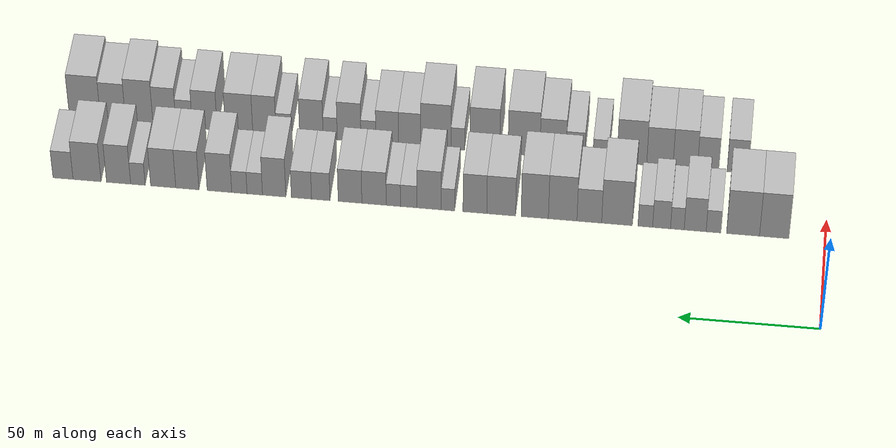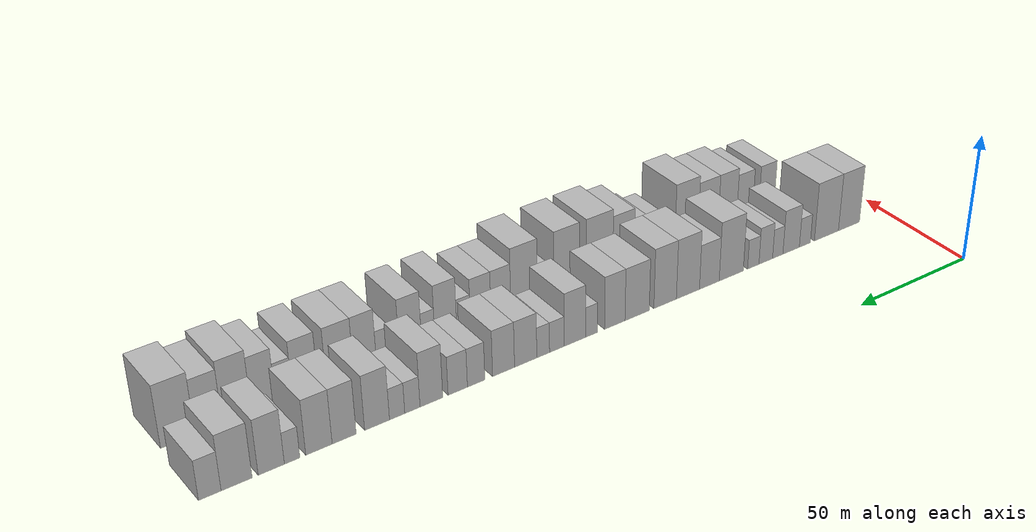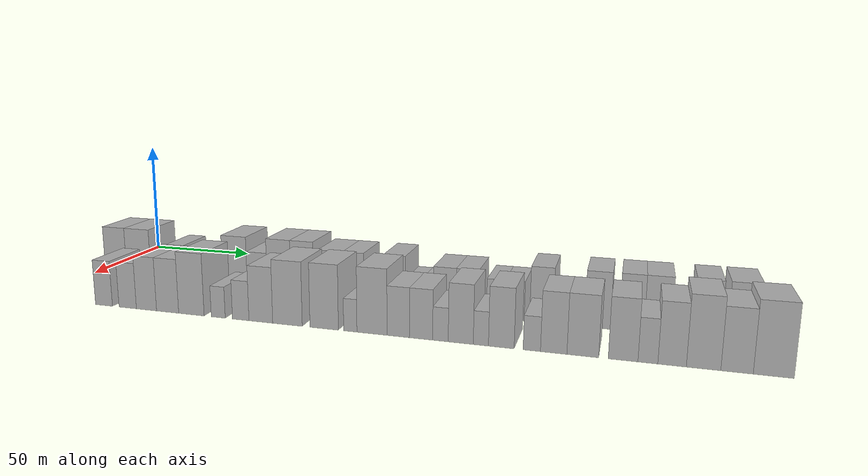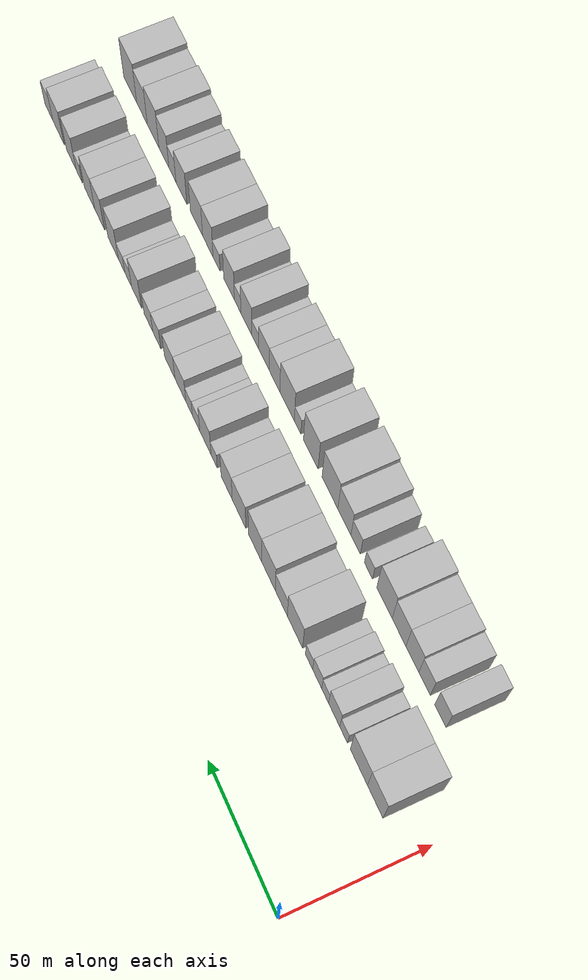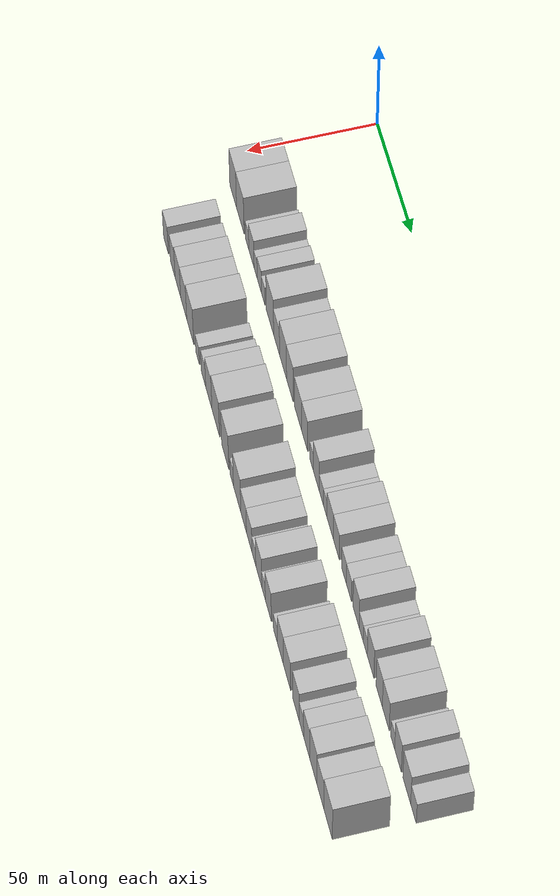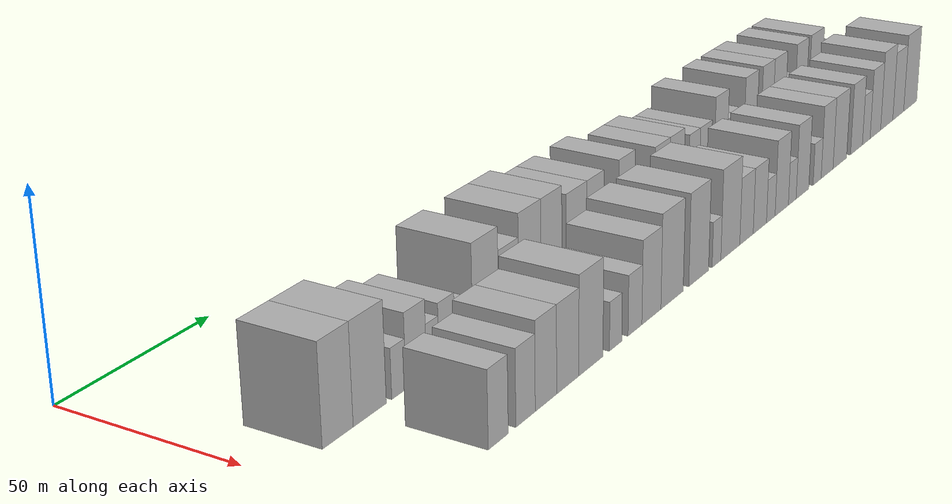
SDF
<sdf version="1.6">
 <world name="default">
  <model name="building_31">
   <static>1</static>
   <pose>50.0000 18.3045 0 0.000000 0.000000 0.000000</pose>
   <link name="link">
    <pose>0 0 12.00 0 0 0</pose>
    <collision name="collision"><geometry><box><size>20.0000 10.5250 24.0000</size></box></geometry></collision>
    <visual name="visual">
     <cast_shadows>0</cast_shadows>
     <geometry><box><size>20.0000 10.5250 24.0000</size></box></geometry>
     <material>
      <script>
       <uri>model://HANNAS_wall/materials/scripts</uri>
       <uri>model://HANNAS_wall/materials/textures</uri>
       <name>vrc/HANNAS_wall</name>
      </script>
     </material>
    </visual>
   </link>
  </model>
  <model name="building_32">
   <static>1</static>
   <pose>50.0000 29.4682 0 0.000000 0.000000 0.000000</pose>
   <link name="link">
    <pose>0 0 12.00 0 0 0</pose>
    <collision name="collision"><geometry><box><size>20.0000 11.8026 24.0000</size></box></geometry></collision>
    <visual name="visual">
     <cast_shadows>0</cast_shadows>
     <geometry><box><size>20.0000 11.8026 24.0000</size></box></geometry>
     <material>
      <script>
       <uri>model://HANNAS_wall/materials/scripts</uri>
       <uri>model://HANNAS_wall/materials/textures</uri>
       <name>vrc/HANNAS_wall</name>
      </script>
     </material>
    </visual>
   </link>
  </model>
  <model name="building_33">
   <static>1</static>
   <pose>50.0000 40.0269 0 0.000000 0.000000 0.000000</pose>
   <link name="link">
    <pose>0 0 6.00 0 0 0</pose>
    <collision name="collision"><geometry><box><size>20.0000 5.3147 12.0000</size></box></geometry></collision>
    <visual name="visual">
     <cast_shadows>0</cast_shadows>
     <geometry><box><size>20.0000 5.3147 12.0000</size></box></geometry>
     <material>
      <script>
       <uri>model://HANNAS_wall/materials/scripts</uri>
       <uri>model://HANNAS_wall/materials/textures</uri>
       <name>vrc/HANNAS_wall</name>
      </script>
     </material>
    </visual>
   </link>
  </model>
  <model name="building_34">
   <static>1</static>
   <pose>50.0000 46.6303 0 0.000000 0.000000 0.000000</pose>
   <link name="link">
    <pose>0 0 9.00 0 0 0</pose>
    <collision name="collision"><geometry><box><size>20.0000 7.8922 18.0000</size></box></geometry></collision>
    <visual name="visual">
     <cast_shadows>0</cast_shadows>
     <geometry><box><size>20.0000 7.8922 18.0000</size></box></geometry>
     <material>
      <script>
       <uri>model://HANNAS_wall/materials/scripts</uri>
       <uri>model://HANNAS_wall/materials/textures</uri>
       <name>vrc/HANNAS_wall</name>
      </script>
     </material>
    </visual>
   </link>
  </model>
  <model name="building_35">
   <static>1</static>
   <pose>50.0000 53.0246 0 0.000000 0.000000 0.000000</pose>
   <link name="link">
    <pose>0 0 6.00 0 0 0</pose>
    <collision name="collision"><geometry><box><size>20.0000 4.8964 12.0000</size></box></geometry></collision>
    <visual name="visual">
     <cast_shadows>0</cast_shadows>
     <geometry><box><size>20.0000 4.8964 12.0000</size></box></geometry>
     <material>
      <script>
       <uri>model://HANNAS_wall/materials/scripts</uri>
       <uri>model://HANNAS_wall/materials/textures</uri>
       <name>vrc/HANNAS_wall</name>
      </script>
     </material>
    </visual>
   </link>
  </model>
  <model name="building_36">
   <static>1</static>
   <pose>50.0000 58.6801 0 0.000000 0.000000 0.000000</pose>
   <link name="link">
    <pose>0 0 7.50 0 0 0</pose>
    <collision name="collision"><geometry><box><size>20.0000 6.4146 15.0000</size></box></geometry></collision>
    <visual name="visual">
     <cast_shadows>0</cast_shadows>
     <geometry><box><size>20.0000 6.4146 15.0000</size></box></geometry>
     <material>
      <script>
       <uri>model://HANNAS_wall/materials/scripts</uri>
       <uri>model://HANNAS_wall/materials/textures</uri>
       <name>vrc/HANNAS_wall</name>
      </script>
     </material>
    </visual>
   </link>
  </model>
  <model name="building_37">
   <static>1</static>
   <pose>50.0000 64.5308 0 0.000000 0.000000 0.000000</pose>
   <link name="link">
    <pose>0 0 6.00 0 0 0</pose>
    <collision name="collision"><geometry><box><size>20.0000 5.2868 12.0000</size></box></geometry></collision>
    <visual name="visual">
     <cast_shadows>0</cast_shadows>
     <geometry><box><size>20.0000 5.2868 12.0000</size></box></geometry>
     <material>
      <script>
       <uri>model://HANNAS_wall/materials/scripts</uri>
       <uri>model://HANNAS_wall/materials/textures</uri>
       <name>vrc/HANNAS_wall</name>
      </script>
     </material>
    </visual>
   </link>
  </model>
  <model name="building_38">
   <static>1</static>
   <pose>50.0000 74.7071 0 0.000000 0.000000 0.000000</pose>
   <link name="link">
    <pose>0 0 12.00 0 0 0</pose>
    <collision name="collision"><geometry><box><size>20.0000 11.0657 24.0000</size></box></geometry></collision>
    <visual name="visual">
     <cast_shadows>0</cast_shadows>
     <geometry><box><size>20.0000 11.0657 24.0000</size></box></geometry>
     <material>
      <script>
       <uri>model://HANNAS_wall/materials/scripts</uri>
       <uri>model://HANNAS_wall/materials/textures</uri>
       <name>vrc/HANNAS_wall</name>
      </script>
     </material>
    </visual>
   </link>
  </model>
  <model name="building_39">
   <static>1</static>
   <pose>50.0000 84.6900 0 0.000000 0.000000 0.000000</pose>
   <link name="link">
    <pose>0 0 9.00 0 0 0</pose>
    <collision name="collision"><geometry><box><size>20.0000 8.9002 18.0000</size></box></geometry></collision>
    <visual name="visual">
     <cast_shadows>0</cast_shadows>
     <geometry><box><size>20.0000 8.9002 18.0000</size></box></geometry>
     <material>
      <script>
       <uri>model://HANNAS_wall/materials/scripts</uri>
       <uri>model://HANNAS_wall/materials/textures</uri>
       <name>vrc/HANNAS_wall</name>
      </script>
     </material>
    </visual>
   </link>
  </model>
  <model name="building_40">
   <static>1</static>
   <pose>50.0000 94.2811 0 0.000000 0.000000 0.000000</pose>
   <link name="link">
    <pose>0 0 12.00 0 0 0</pose>
    <collision name="collision"><geometry><box><size>20.0000 10.2821 24.0000</size></box></geometry></collision>
    <visual name="visual">
     <cast_shadows>0</cast_shadows>
     <geometry><box><size>20.0000 10.2821 24.0000</size></box></geometry>
     <material>
      <script>
       <uri>model://HANNAS_wall/materials/scripts</uri>
       <uri>model://HANNAS_wall/materials/textures</uri>
       <name>vrc/HANNAS_wall</name>
      </script>
     </material>
    </visual>
   </link>
  </model>
  <model name="building_41">
   <static>1</static>
   <pose>50.0000 104.3454 0 0.000000 0.000000 0.000000</pose>
   <link name="link">
    <pose>0 0 12.00 0 0 0</pose>
    <collision name="collision"><geometry><box><size>20.0000 9.8465 24.0000</size></box></geometry></collision>
    <visual name="visual">
     <cast_shadows>0</cast_shadows>
     <geometry><box><size>20.0000 9.8465 24.0000</size></box></geometry>
     <material>
      <script>
       <uri>model://HANNAS_wall/materials/scripts</uri>
       <uri>model://HANNAS_wall/materials/textures</uri>
       <name>vrc/HANNAS_wall</name>
      </script>
     </material>
    </visual>
   </link>
  </model>
  <model name="building_42">
   <static>1</static>
   <pose>50.0000 116.4671 0 0.000000 0.000000 0.000000</pose>
   <link name="link">
    <pose>0 0 10.50 0 0 0</pose>
    <collision name="collision"><geometry><box><size>20.0000 10.3969 21.0000</size></box></geometry></collision>
    <visual name="visual">
     <cast_shadows>0</cast_shadows>
     <geometry><box><size>20.0000 10.3969 21.0000</size></box></geometry>
     <material>
      <script>
       <uri>model://HANNAS_wall/materials/scripts</uri>
       <uri>model://HANNAS_wall/materials/textures</uri>
       <name>vrc/HANNAS_wall</name>
      </script>
     </material>
    </visual>
   </link>
  </model>
  <model name="building_43">
   <static>1</static>
   <pose>50.0000 125.9778 0 0.000000 0.000000 0.000000</pose>
   <link name="link">
    <pose>0 0 10.50 0 0 0</pose>
    <collision name="collision"><geometry><box><size>20.0000 8.6244 21.0000</size></box></geometry></collision>
    <visual name="visual">
     <cast_shadows>0</cast_shadows>
     <geometry><box><size>20.0000 8.6244 21.0000</size></box></geometry>
     <material>
      <script>
       <uri>model://HANNAS_wall/materials/scripts</uri>
       <uri>model://HANNAS_wall/materials/textures</uri>
       <name>vrc/HANNAS_wall</name>
      </script>
     </material>
    </visual>
   </link>
  </model>
  <model name="building_44">
   <static>1</static>
   <pose>50.0000 135.7127 0 0.000000 0.000000 0.000000</pose>
   <link name="link">
    <pose>0 0 6.00 0 0 0</pose>
    <collision name="collision"><geometry><box><size>20.0000 4.8454 12.0000</size></box></geometry></collision>
    <visual name="visual">
     <cast_shadows>0</cast_shadows>
     <geometry><box><size>20.0000 4.8454 12.0000</size></box></geometry>
     <material>
      <script>
       <uri>model://HANNAS_wall/materials/scripts</uri>
       <uri>model://HANNAS_wall/materials/textures</uri>
       <name>vrc/HANNAS_wall</name>
      </script>
     </material>
    </visual>
   </link>
  </model>
  <model name="building_45">
   <static>1</static>
   <pose>50.0000 142.5539 0 0.000000 0.000000 0.000000</pose>
   <link name="link">
    <pose>0 0 10.50 0 0 0</pose>
    <collision name="collision"><geometry><box><size>20.0000 8.8371 21.0000</size></box></geometry></collision>
    <visual name="visual">
     <cast_shadows>0</cast_shadows>
     <geometry><box><size>20.0000 8.8371 21.0000</size></box></geometry>
     <material>
      <script>
       <uri>model://HANNAS_wall/materials/scripts</uri>
       <uri>model://HANNAS_wall/materials/textures</uri>
       <name>vrc/HANNAS_wall</name>
      </script>
     </material>
    </visual>
   </link>
  </model>
  <model name="building_46">
   <static>1</static>
   <pose>50.0000 149.9584 0 0.000000 0.000000 0.000000</pose>
   <link name="link">
    <pose>0 0 6.00 0 0 0</pose>
    <collision name="collision"><geometry><box><size>20.0000 5.9719 12.0000</size></box></geometry></collision>
    <visual name="visual">
     <cast_shadows>0</cast_shadows>
     <geometry><box><size>20.0000 5.9719 12.0000</size></box></geometry>
     <material>
      <script>
       <uri>model://HANNAS_wall/materials/scripts</uri>
       <uri>model://HANNAS_wall/materials/textures</uri>
       <name>vrc/HANNAS_wall</name>
      </script>
     </material>
    </visual>
   </link>
  </model>
  <model name="building_47">
   <static>1</static>
   <pose>50.0000 155.5113 0 0.000000 0.000000 0.000000</pose>
   <link name="link">
    <pose>0 0 6.00 0 0 0</pose>
    <collision name="collision"><geometry><box><size>20.0000 5.1338 12.0000</size></box></geometry></collision>
    <visual name="visual">
     <cast_shadows>0</cast_shadows>
     <geometry><box><size>20.0000 5.1338 12.0000</size></box></geometry>
     <material>
      <script>
       <uri>model://HANNAS_wall/materials/scripts</uri>
       <uri>model://HANNAS_wall/materials/textures</uri>
       <name>vrc/HANNAS_wall</name>
      </script>
     </material>
    </visual>
   </link>
  </model>
  <model name="building_48">
   <static>1</static>
   <pose>50.0000 162.5035 0 0.000000 0.000000 0.000000</pose>
   <link name="link">
    <pose>0 0 9.00 0 0 0</pose>
    <collision name="collision"><geometry><box><size>20.0000 8.8507 18.0000</size></box></geometry></collision>
    <visual name="visual">
     <cast_shadows>0</cast_shadows>
     <geometry><box><size>20.0000 8.8507 18.0000</size></box></geometry>
     <material>
      <script>
       <uri>model://HANNAS_wall/materials/scripts</uri>
       <uri>model://HANNAS_wall/materials/textures</uri>
       <name>vrc/HANNAS_wall</name>
      </script>
     </material>
    </visual>
   </link>
  </model>
  <model name="building_49">
   <static>1</static>
   <pose>50.0000 171.2219 0 0.000000 0.000000 0.000000</pose>
   <link name="link">
    <pose>0 0 9.00 0 0 0</pose>
    <collision name="collision"><geometry><box><size>20.0000 8.5860 18.0000</size></box></geometry></collision>
    <visual name="visual">
     <cast_shadows>0</cast_shadows>
     <geometry><box><size>20.0000 8.5860 18.0000</size></box></geometry>
     <material>
      <script>
       <uri>model://HANNAS_wall/materials/scripts</uri>
       <uri>model://HANNAS_wall/materials/textures</uri>
       <name>vrc/HANNAS_wall</name>
      </script>
     </material>
    </visual>
   </link>
  </model>
  <model name="building_50">
   <static>1</static>
   <pose>50.0000 181.8632 0 0.000000 0.000000 0.000000</pose>
   <link name="link">
    <pose>0 0 7.50 0 0 0</pose>
    <collision name="collision"><geometry><box><size>20.0000 6.6967 15.0000</size></box></geometry></collision>
    <visual name="visual">
     <cast_shadows>0</cast_shadows>
     <geometry><box><size>20.0000 6.6967 15.0000</size></box></geometry>
     <material>
      <script>
       <uri>model://HANNAS_wall/materials/scripts</uri>
       <uri>model://HANNAS_wall/materials/textures</uri>
       <name>vrc/HANNAS_wall</name>
      </script>
     </material>
    </visual>
   </link>
  </model>
  <model name="building_51">
   <static>1</static>
   <pose>50.0000 188.8856 0 0.000000 0.000000 0.000000</pose>
   <link name="link">
    <pose>0 0 7.50 0 0 0</pose>
    <collision name="collision"><geometry><box><size>20.0000 7.3482 15.0000</size></box></geometry></collision>
    <visual name="visual">
     <cast_shadows>0</cast_shadows>
     <geometry><box><size>20.0000 7.3482 15.0000</size></box></geometry>
     <material>
      <script>
       <uri>model://HANNAS_wall/materials/scripts</uri>
       <uri>model://HANNAS_wall/materials/textures</uri>
       <name>vrc/HANNAS_wall</name>
      </script>
     </material>
    </visual>
   </link>
  </model>
  <model name="building_52">
   <static>1</static>
   <pose>50.0000 198.8097 0 0.000000 0.000000 0.000000</pose>
   <link name="link">
    <pose>0 0 10.50 0 0 0</pose>
    <collision name="collision"><geometry><box><size>20.0000 8.5000 21.0000</size></box></geometry></collision>
    <visual name="visual">
     <cast_shadows>0</cast_shadows>
     <geometry><box><size>20.0000 8.5000 21.0000</size></box></geometry>
     <material>
      <script>
       <uri>model://HANNAS_wall/materials/scripts</uri>
       <uri>model://HANNAS_wall/materials/textures</uri>
       <name>vrc/HANNAS_wall</name>
      </script>
     </material>
    </visual>
   </link>
  </model>
  <model name="building_53">
   <static>1</static>
   <pose>50.0000 205.8723 0 0.000000 0.000000 0.000000</pose>
   <link name="link">
    <pose>0 0 6.00 0 0 0</pose>
    <collision name="collision"><geometry><box><size>20.0000 5.6251 12.0000</size></box></geometry></collision>
    <visual name="visual">
     <cast_shadows>0</cast_shadows>
     <geometry><box><size>20.0000 5.6251 12.0000</size></box></geometry>
     <material>
      <script>
       <uri>model://HANNAS_wall/materials/scripts</uri>
       <uri>model://HANNAS_wall/materials/textures</uri>
       <name>vrc/HANNAS_wall</name>
      </script>
     </material>
    </visual>
   </link>
  </model>
  <model name="building_54">
   <static>1</static>
   <pose>50.0000 211.4759 0 0.000000 0.000000 0.000000</pose>
   <link name="link">
    <pose>0 0 6.00 0 0 0</pose>
    <collision name="collision"><geometry><box><size>20.0000 5.5822 12.0000</size></box></geometry></collision>
    <visual name="visual">
     <cast_shadows>0</cast_shadows>
     <geometry><box><size>20.0000 5.5822 12.0000</size></box></geometry>
     <material>
      <script>
       <uri>model://HANNAS_wall/materials/scripts</uri>
       <uri>model://HANNAS_wall/materials/textures</uri>
       <name>vrc/HANNAS_wall</name>
      </script>
     </material>
    </visual>
   </link>
  </model>
  <model name="building_55">
   <static>1</static>
   <pose>50.0000 218.7514 0 0.000000 0.000000 0.000000</pose>
   <link name="link">
    <pose>0 0 10.50 0 0 0</pose>
    <collision name="collision"><geometry><box><size>20.0000 8.9689 21.0000</size></box></geometry></collision>
    <visual name="visual">
     <cast_shadows>0</cast_shadows>
     <geometry><box><size>20.0000 8.9689 21.0000</size></box></geometry>
     <material>
      <script>
       <uri>model://HANNAS_wall/materials/scripts</uri>
       <uri>model://HANNAS_wall/materials/textures</uri>
       <name>vrc/HANNAS_wall</name>
      </script>
     </material>
    </visual>
   </link>
  </model>
  <model name="building_56">
   <static>1</static>
   <pose>50.0000 230.4729 0 0.000000 0.000000 0.000000</pose>
   <link name="link">
    <pose>0 0 10.50 0 0 0</pose>
    <collision name="collision"><geometry><box><size>20.0000 8.4740 21.0000</size></box></geometry></collision>
    <visual name="visual">
     <cast_shadows>0</cast_shadows>
     <geometry><box><size>20.0000 8.4740 21.0000</size></box></geometry>
     <material>
      <script>
       <uri>model://HANNAS_wall/materials/scripts</uri>
       <uri>model://HANNAS_wall/materials/textures</uri>
       <name>vrc/HANNAS_wall</name>
      </script>
     </material>
    </visual>
   </link>
  </model>
  <model name="building_57">
   <static>1</static>
   <pose>50.0000 239.3039 0 0.000000 0.000000 0.000000</pose>
   <link name="link">
    <pose>0 0 10.50 0 0 0</pose>
    <collision name="collision"><geometry><box><size>20.0000 9.1881 21.0000</size></box></geometry></collision>
    <visual name="visual">
     <cast_shadows>0</cast_shadows>
     <geometry><box><size>20.0000 9.1881 21.0000</size></box></geometry>
     <material>
      <script>
       <uri>model://HANNAS_wall/materials/scripts</uri>
       <uri>model://HANNAS_wall/materials/textures</uri>
       <name>vrc/HANNAS_wall</name>
      </script>
     </material>
    </visual>
   </link>
  </model>
  <model name="building_58">
   <static>1</static>
   <pose>50.0000 248.5502 0 0.000000 0.000000 0.000000</pose>
   <link name="link">
    <pose>0 0 6.00 0 0 0</pose>
    <collision name="collision"><geometry><box><size>20.0000 5.3045 12.0000</size></box></geometry></collision>
    <visual name="visual">
     <cast_shadows>0</cast_shadows>
     <geometry><box><size>20.0000 5.3045 12.0000</size></box></geometry>
     <material>
      <script>
       <uri>model://HANNAS_wall/materials/scripts</uri>
       <uri>model://HANNAS_wall/materials/textures</uri>
       <name>vrc/HANNAS_wall</name>
      </script>
     </material>
    </visual>
   </link>
  </model>
  <model name="building_59">
   <static>1</static>
   <pose>50.0000 255.6241 0 0.000000 0.000000 0.000000</pose>
   <link name="link">
    <pose>0 0 10.50 0 0 0</pose>
    <collision name="collision"><geometry><box><size>20.0000 8.8433 21.0000</size></box></geometry></collision>
    <visual name="visual">
     <cast_shadows>0</cast_shadows>
     <geometry><box><size>20.0000 8.8433 21.0000</size></box></geometry>
     <material>
      <script>
       <uri>model://HANNAS_wall/materials/scripts</uri>
       <uri>model://HANNAS_wall/materials/textures</uri>
       <name>vrc/HANNAS_wall</name>
      </script>
     </material>
    </visual>
   </link>
  </model>
  <model name="building_60">
   <static>1</static>
   <pose>50.0000 267.1729 0 0.000000 0.000000 0.000000</pose>
   <link name="link">
    <pose>0 0 10.50 0 0 0</pose>
    <collision name="collision"><geometry><box><size>20.0000 10.2544 21.0000</size></box></geometry></collision>
    <visual name="visual">
     <cast_shadows>0</cast_shadows>
     <geometry><box><size>20.0000 10.2544 21.0000</size></box></geometry>
     <material>
      <script>
       <uri>model://HANNAS_wall/materials/scripts</uri>
       <uri>model://HANNAS_wall/materials/textures</uri>
       <name>vrc/HANNAS_wall</name>
      </script>
     </material>
    </visual>
   </link>
  </model>
  <model name="building_61">
   <static>1</static>
   <pose>50.0000 275.9822 0 0.000000 0.000000 0.000000</pose>
   <link name="link">
    <pose>0 0 7.50 0 0 0</pose>
    <collision name="collision"><geometry><box><size>20.0000 7.3640 15.0000</size></box></geometry></collision>
    <visual name="visual">
     <cast_shadows>0</cast_shadows>
     <geometry><box><size>20.0000 7.3640 15.0000</size></box></geometry>
     <material>
      <script>
       <uri>model://HANNAS_wall/materials/scripts</uri>
       <uri>model://HANNAS_wall/materials/textures</uri>
       <name>vrc/HANNAS_wall</name>
      </script>
     </material>
    </visual>
   </link>
  </model>
  <model name="building_90">
   <static>1</static>
   <pose>79.0000 33.1188 0 0.000000 0.000000 0.000000</pose>
   <link name="link">
    <pose>0 0 9.00 0 0 0</pose>
    <collision name="collision"><geometry><box><size>20.0000 7.6847 18.0000</size></box></geometry></collision>
    <visual name="visual">
     <cast_shadows>0</cast_shadows>
     <geometry><box><size>20.0000 7.6847 18.0000</size></box></geometry>
     <material>
      <script>
       <uri>model://HANNAS_wall/materials/scripts</uri>
       <uri>model://HANNAS_wall/materials/textures</uri>
       <name>vrc/HANNAS_wall</name>
      </script>
     </material>
    </visual>
   </link>
  </model>
  <model name="building_91">
   <static>1</static>
   <pose>79.0000 43.8431 0 0.000000 0.000000 0.000000</pose>
   <link name="link">
    <pose>0 0 9.00 0 0 0</pose>
    <collision name="collision"><geometry><box><size>20.0000 7.7638 18.0000</size></box></geometry></collision>
    <visual name="visual">
     <cast_shadows>0</cast_shadows>
     <geometry><box><size>20.0000 7.7638 18.0000</size></box></geometry>
     <material>
      <script>
       <uri>model://HANNAS_wall/materials/scripts</uri>
       <uri>model://HANNAS_wall/materials/textures</uri>
       <name>vrc/HANNAS_wall</name>
      </script>
     </material>
    </visual>
   </link>
  </model>
  <model name="building_92">
   <static>1</static>
   <pose>79.0000 52.1648 0 0.000000 0.000000 0.000000</pose>
   <link name="link">
    <pose>0 0 10.50 0 0 0</pose>
    <collision name="collision"><geometry><box><size>20.0000 8.8795 21.0000</size></box></geometry></collision>
    <visual name="visual">
     <cast_shadows>0</cast_shadows>
     <geometry><box><size>20.0000 8.8795 21.0000</size></box></geometry>
     <material>
      <script>
       <uri>model://HANNAS_wall/materials/scripts</uri>
       <uri>model://HANNAS_wall/materials/textures</uri>
       <name>vrc/HANNAS_wall</name>
      </script>
     </material>
    </visual>
   </link>
  </model>
  <model name="building_93">
   <static>1</static>
   <pose>79.0000 61.3990 0 0.000000 0.000000 0.000000</pose>
   <link name="link">
    <pose>0 0 10.50 0 0 0</pose>
    <collision name="collision"><geometry><box><size>20.0000 9.5889 21.0000</size></box></geometry></collision>
    <visual name="visual">
     <cast_shadows>0</cast_shadows>
     <geometry><box><size>20.0000 9.5889 21.0000</size></box></geometry>
     <material>
      <script>
       <uri>model://HANNAS_wall/materials/scripts</uri>
       <uri>model://HANNAS_wall/materials/textures</uri>
       <name>vrc/HANNAS_wall</name>
      </script>
     </material>
    </visual>
   </link>
  </model>
  <model name="building_94">
   <static>1</static>
   <pose>79.0000 71.6170 0 0.000000 0.000000 0.000000</pose>
   <link name="link">
    <pose>0 0 12.00 0 0 0</pose>
    <collision name="collision"><geometry><box><size>20.0000 10.8472 24.0000</size></box></geometry></collision>
    <visual name="visual">
     <cast_shadows>0</cast_shadows>
     <geometry><box><size>20.0000 10.8472 24.0000</size></box></geometry>
     <material>
      <script>
       <uri>model://HANNAS_wall/materials/scripts</uri>
       <uri>model://HANNAS_wall/materials/textures</uri>
       <name>vrc/HANNAS_wall</name>
      </script>
     </material>
    </visual>
   </link>
  </model>
  <model name="building_95">
   <static>1</static>
   <pose>79.0000 82.9405 0 0.000000 0.000000 0.000000</pose>
   <link name="link">
    <pose>0 0 6.00 0 0 0</pose>
    <collision name="collision"><geometry><box><size>20.0000 5.7998 12.0000</size></box></geometry></collision>
    <visual name="visual">
     <cast_shadows>0</cast_shadows>
     <geometry><box><size>20.0000 5.7998 12.0000</size></box></geometry>
     <material>
      <script>
       <uri>model://HANNAS_wall/materials/scripts</uri>
       <uri>model://HANNAS_wall/materials/textures</uri>
       <name>vrc/HANNAS_wall</name>
      </script>
     </material>
    </visual>
   </link>
  </model>
  <model name="building_96">
   <static>1</static>
   <pose>79.0000 92.2154 0 0.000000 0.000000 0.000000</pose>
   <link name="link">
    <pose>0 0 7.50 0 0 0</pose>
    <collision name="collision"><geometry><box><size>20.0000 6.7500 15.0000</size></box></geometry></collision>
    <visual name="visual">
     <cast_shadows>0</cast_shadows>
     <geometry><box><size>20.0000 6.7500 15.0000</size></box></geometry>
     <material>
      <script>
       <uri>model://HANNAS_wall/materials/scripts</uri>
       <uri>model://HANNAS_wall/materials/textures</uri>
       <name>vrc/HANNAS_wall</name>
      </script>
     </material>
    </visual>
   </link>
  </model>
  <model name="building_97">
   <static>1</static>
   <pose>79.0000 100.3749 0 0.000000 0.000000 0.000000</pose>
   <link name="link">
    <pose>0 0 10.50 0 0 0</pose>
    <collision name="collision"><geometry><box><size>20.0000 9.5691 21.0000</size></box></geometry></collision>
    <visual name="visual">
     <cast_shadows>0</cast_shadows>
     <geometry><box><size>20.0000 9.5691 21.0000</size></box></geometry>
     <material>
      <script>
       <uri>model://HANNAS_wall/materials/scripts</uri>
       <uri>model://HANNAS_wall/materials/textures</uri>
       <name>vrc/HANNAS_wall</name>
      </script>
     </material>
    </visual>
   </link>
  </model>
  <model name="building_98">
   <static>1</static>
   <pose>79.0000 110.9845 0 0.000000 0.000000 0.000000</pose>
   <link name="link">
    <pose>0 0 12.00 0 0 0</pose>
    <collision name="collision"><geometry><box><size>20.0000 11.6500 24.0000</size></box></geometry></collision>
    <visual name="visual">
     <cast_shadows>0</cast_shadows>
     <geometry><box><size>20.0000 11.6500 24.0000</size></box></geometry>
     <material>
      <script>
       <uri>model://HANNAS_wall/materials/scripts</uri>
       <uri>model://HANNAS_wall/materials/textures</uri>
       <name>vrc/HANNAS_wall</name>
      </script>
     </material>
    </visual>
   </link>
  </model>
  <model name="building_99">
   <static>1</static>
   <pose>79.0000 125.2608 0 0.000000 0.000000 0.000000</pose>
   <link name="link">
    <pose>0 0 12.00 0 0 0</pose>
    <collision name="collision"><geometry><box><size>20.0000 10.9028 24.0000</size></box></geometry></collision>
    <visual name="visual">
     <cast_shadows>0</cast_shadows>
     <geometry><box><size>20.0000 10.9028 24.0000</size></box></geometry>
     <material>
      <script>
       <uri>model://HANNAS_wall/materials/scripts</uri>
       <uri>model://HANNAS_wall/materials/textures</uri>
       <name>vrc/HANNAS_wall</name>
      </script>
     </material>
    </visual>
   </link>
  </model>
  <model name="building_100">
   <static>1</static>
   <pose>79.0000 135.2028 0 0.000000 0.000000 0.000000</pose>
   <link name="link">
    <pose>0 0 6.00 0 0 0</pose>
    <collision name="collision"><geometry><box><size>20.0000 4.9811 12.0000</size></box></geometry></collision>
    <visual name="visual">
     <cast_shadows>0</cast_shadows>
     <geometry><box><size>20.0000 4.9811 12.0000</size></box></geometry>
     <material>
      <script>
       <uri>model://HANNAS_wall/materials/scripts</uri>
       <uri>model://HANNAS_wall/materials/textures</uri>
       <name>vrc/HANNAS_wall</name>
      </script>
     </material>
    </visual>
   </link>
  </model>
  <model name="building_101">
   <static>1</static>
   <pose>79.0000 143.2543 0 0.000000 0.000000 0.000000</pose>
   <link name="link">
    <pose>0 0 12.00 0 0 0</pose>
    <collision name="collision"><geometry><box><size>20.0000 11.1219 24.0000</size></box></geometry></collision>
    <visual name="visual">
     <cast_shadows>0</cast_shadows>
     <geometry><box><size>20.0000 11.1219 24.0000</size></box></geometry>
     <material>
      <script>
       <uri>model://HANNAS_wall/materials/scripts</uri>
       <uri>model://HANNAS_wall/materials/textures</uri>
       <name>vrc/HANNAS_wall</name>
      </script>
     </material>
    </visual>
   </link>
  </model>
  <model name="building_102">
   <static>1</static>
   <pose>79.0000 152.8846 0 0.000000 0.000000 0.000000</pose>
   <link name="link">
    <pose>0 0 9.00 0 0 0</pose>
    <collision name="collision"><geometry><box><size>20.0000 8.1387 18.0000</size></box></geometry></collision>
    <visual name="visual">
     <cast_shadows>0</cast_shadows>
     <geometry><box><size>20.0000 8.1387 18.0000</size></box></geometry>
     <material>
      <script>
       <uri>model://HANNAS_wall/materials/scripts</uri>
       <uri>model://HANNAS_wall/materials/textures</uri>
       <name>vrc/HANNAS_wall</name>
      </script>
     </material>
    </visual>
   </link>
  </model>
  <model name="building_103">
   <static>1</static>
   <pose>79.0000 161.1073 0 0.000000 0.000000 0.000000</pose>
   <link name="link">
    <pose>0 0 9.00 0 0 0</pose>
    <collision name="collision"><geometry><box><size>20.0000 8.3067 18.0000</size></box></geometry></collision>
    <visual name="visual">
     <cast_shadows>0</cast_shadows>
     <geometry><box><size>20.0000 8.3067 18.0000</size></box></geometry>
     <material>
      <script>
       <uri>model://HANNAS_wall/materials/scripts</uri>
       <uri>model://HANNAS_wall/materials/textures</uri>
       <name>vrc/HANNAS_wall</name>
      </script>
     </material>
    </visual>
   </link>
  </model>
  <model name="building_104">
   <static>1</static>
   <pose>79.0000 168.0073 0 0.000000 0.000000 0.000000</pose>
   <link name="link">
    <pose>0 0 6.00 0 0 0</pose>
    <collision name="collision"><geometry><box><size>20.0000 5.4934 12.0000</size></box></geometry></collision>
    <visual name="visual">
     <cast_shadows>0</cast_shadows>
     <geometry><box><size>20.0000 5.4934 12.0000</size></box></geometry>
     <material>
      <script>
       <uri>model://HANNAS_wall/materials/scripts</uri>
       <uri>model://HANNAS_wall/materials/textures</uri>
       <name>vrc/HANNAS_wall</name>
      </script>
     </material>
    </visual>
   </link>
  </model>
  <model name="building_105">
   <static>1</static>
   <pose>79.0000 175.1043 0 0.000000 0.000000 0.000000</pose>
   <link name="link">
    <pose>0 0 10.50 0 0 0</pose>
    <collision name="collision"><geometry><box><size>20.0000 8.7007 21.0000</size></box></geometry></collision>
    <visual name="visual">
     <cast_shadows>0</cast_shadows>
     <geometry><box><size>20.0000 8.7007 21.0000</size></box></geometry>
     <material>
      <script>
       <uri>model://HANNAS_wall/materials/scripts</uri>
       <uri>model://HANNAS_wall/materials/textures</uri>
       <name>vrc/HANNAS_wall</name>
      </script>
     </material>
    </visual>
   </link>
  </model>
  <model name="building_106">
   <static>1</static>
   <pose>79.0000 182.0475 0 0.000000 0.000000 0.000000</pose>
   <link name="link">
    <pose>0 0 6.00 0 0 0</pose>
    <collision name="collision"><geometry><box><size>20.0000 5.1856 12.0000</size></box></geometry></collision>
    <visual name="visual">
     <cast_shadows>0</cast_shadows>
     <geometry><box><size>20.0000 5.1856 12.0000</size></box></geometry>
     <material>
      <script>
       <uri>model://HANNAS_wall/materials/scripts</uri>
       <uri>model://HANNAS_wall/materials/textures</uri>
       <name>vrc/HANNAS_wall</name>
      </script>
     </material>
    </visual>
   </link>
  </model>
  <model name="building_107">
   <static>1</static>
   <pose>79.0000 188.9695 0 0.000000 0.000000 0.000000</pose>
   <link name="link">
    <pose>0 0 10.50 0 0 0</pose>
    <collision name="collision"><geometry><box><size>20.0000 8.6586 21.0000</size></box></geometry></collision>
    <visual name="visual">
     <cast_shadows>0</cast_shadows>
     <geometry><box><size>20.0000 8.6586 21.0000</size></box></geometry>
     <material>
      <script>
       <uri>model://HANNAS_wall/materials/scripts</uri>
       <uri>model://HANNAS_wall/materials/textures</uri>
       <name>vrc/HANNAS_wall</name>
      </script>
     </material>
    </visual>
   </link>
  </model>
  <model name="building_108">
   <static>1</static>
   <pose>79.0000 199.1555 0 0.000000 0.000000 0.000000</pose>
   <link name="link">
    <pose>0 0 6.00 0 0 0</pose>
    <collision name="collision"><geometry><box><size>20.0000 5.7133 12.0000</size></box></geometry></collision>
    <visual name="visual">
     <cast_shadows>0</cast_shadows>
     <geometry><box><size>20.0000 5.7133 12.0000</size></box></geometry>
     <material>
      <script>
       <uri>model://HANNAS_wall/materials/scripts</uri>
       <uri>model://HANNAS_wall/materials/textures</uri>
       <name>vrc/HANNAS_wall</name>
      </script>
     </material>
    </visual>
   </link>
  </model>
  <model name="building_109">
   <static>1</static>
   <pose>79.0000 206.3096 0 0.000000 0.000000 0.000000</pose>
   <link name="link">
    <pose>0 0 10.50 0 0 0</pose>
    <collision name="collision"><geometry><box><size>20.0000 8.5950 21.0000</size></box></geometry></collision>
    <visual name="visual">
     <cast_shadows>0</cast_shadows>
     <geometry><box><size>20.0000 8.5950 21.0000</size></box></geometry>
     <material>
      <script>
       <uri>model://HANNAS_wall/materials/scripts</uri>
       <uri>model://HANNAS_wall/materials/textures</uri>
       <name>vrc/HANNAS_wall</name>
      </script>
     </material>
    </visual>
   </link>
  </model>
  <model name="building_110">
   <static>1</static>
   <pose>79.0000 215.6664 0 0.000000 0.000000 0.000000</pose>
   <link name="link">
    <pose>0 0 10.50 0 0 0</pose>
    <collision name="collision"><geometry><box><size>20.0000 10.1188 21.0000</size></box></geometry></collision>
    <visual name="visual">
     <cast_shadows>0</cast_shadows>
     <geometry><box><size>20.0000 10.1188 21.0000</size></box></geometry>
     <material>
      <script>
       <uri>model://HANNAS_wall/materials/scripts</uri>
       <uri>model://HANNAS_wall/materials/textures</uri>
       <name>vrc/HANNAS_wall</name>
      </script>
     </material>
    </visual>
   </link>
  </model>
  <model name="building_111">
   <static>1</static>
   <pose>79.0000 228.3238 0 0.000000 0.000000 0.000000</pose>
   <link name="link">
    <pose>0 0 10.50 0 0 0</pose>
    <collision name="collision"><geometry><box><size>20.0000 9.1959 21.0000</size></box></geometry></collision>
    <visual name="visual">
     <cast_shadows>0</cast_shadows>
     <geometry><box><size>20.0000 9.1959 21.0000</size></box></geometry>
     <material>
      <script>
       <uri>model://HANNAS_wall/materials/scripts</uri>
       <uri>model://HANNAS_wall/materials/textures</uri>
       <name>vrc/HANNAS_wall</name>
      </script>
     </material>
    </visual>
   </link>
  </model>
  <model name="building_112">
   <static>1</static>
   <pose>79.0000 235.9513 0 0.000000 0.000000 0.000000</pose>
   <link name="link">
    <pose>0 0 7.50 0 0 0</pose>
    <collision name="collision"><geometry><box><size>20.0000 6.0590 15.0000</size></box></geometry></collision>
    <visual name="visual">
     <cast_shadows>0</cast_shadows>
     <geometry><box><size>20.0000 6.0590 15.0000</size></box></geometry>
     <material>
      <script>
       <uri>model://HANNAS_wall/materials/scripts</uri>
       <uri>model://HANNAS_wall/materials/textures</uri>
       <name>vrc/HANNAS_wall</name>
      </script>
     </material>
    </visual>
   </link>
  </model>
  <model name="building_113">
   <static>1</static>
   <pose>79.0000 243.2463 0 0.000000 0.000000 0.000000</pose>
   <link name="link">
    <pose>0 0 10.50 0 0 0</pose>
    <collision name="collision"><geometry><box><size>20.0000 8.5310 21.0000</size></box></geometry></collision>
    <visual name="visual">
     <cast_shadows>0</cast_shadows>
     <geometry><box><size>20.0000 8.5310 21.0000</size></box></geometry>
     <material>
      <script>
       <uri>model://HANNAS_wall/materials/scripts</uri>
       <uri>model://HANNAS_wall/materials/textures</uri>
       <name>vrc/HANNAS_wall</name>
      </script>
     </material>
    </visual>
   </link>
  </model>
  <model name="building_114">
   <static>1</static>
   <pose>79.0000 252.5722 0 0.000000 0.000000 0.000000</pose>
   <link name="link">
    <pose>0 0 12.00 0 0 0</pose>
    <collision name="collision"><geometry><box><size>20.0000 10.1208 24.0000</size></box></geometry></collision>
    <visual name="visual">
     <cast_shadows>0</cast_shadows>
     <geometry><box><size>20.0000 10.1208 24.0000</size></box></geometry>
     <material>
      <script>
       <uri>model://HANNAS_wall/materials/scripts</uri>
       <uri>model://HANNAS_wall/materials/textures</uri>
       <name>vrc/HANNAS_wall</name>
      </script>
     </material>
    </visual>
   </link>
  </model>
  <model name="building_115">
   <static>1</static>
   <pose>79.0000 262.2877 0 0.000000 0.000000 0.000000</pose>
   <link name="link">
    <pose>0 0 10.50 0 0 0</pose>
    <collision name="collision"><geometry><box><size>20.0000 9.3103 21.0000</size></box></geometry></collision>
    <visual name="visual">
     <cast_shadows>0</cast_shadows>
     <geometry><box><size>20.0000 9.3103 21.0000</size></box></geometry>
     <material>
      <script>
       <uri>model://HANNAS_wall/materials/scripts</uri>
       <uri>model://HANNAS_wall/materials/textures</uri>
       <name>vrc/HANNAS_wall</name>
      </script>
     </material>
    </visual>
   </link>
  </model>
  <model name="building_116">
   <static>1</static>
   <pose>79.0000 272.7023 0 0.000000 0.000000 0.000000</pose>
   <link name="link">
    <pose>0 0 12.00 0 0 0</pose>
    <collision name="collision"><geometry><box><size>20.0000 11.5189 24.0000</size></box></geometry></collision>
    <visual name="visual">
     <cast_shadows>0</cast_shadows>
     <geometry><box><size>20.0000 11.5189 24.0000</size></box></geometry>
     <material>
      <script>
       <uri>model://HANNAS_wall/materials/scripts</uri>
       <uri>model://HANNAS_wall/materials/textures</uri>
       <name>vrc/HANNAS_wall</name>
      </script>
     </material>
    </visual>
   </link>
  </model>
 </world>
</sdf>
